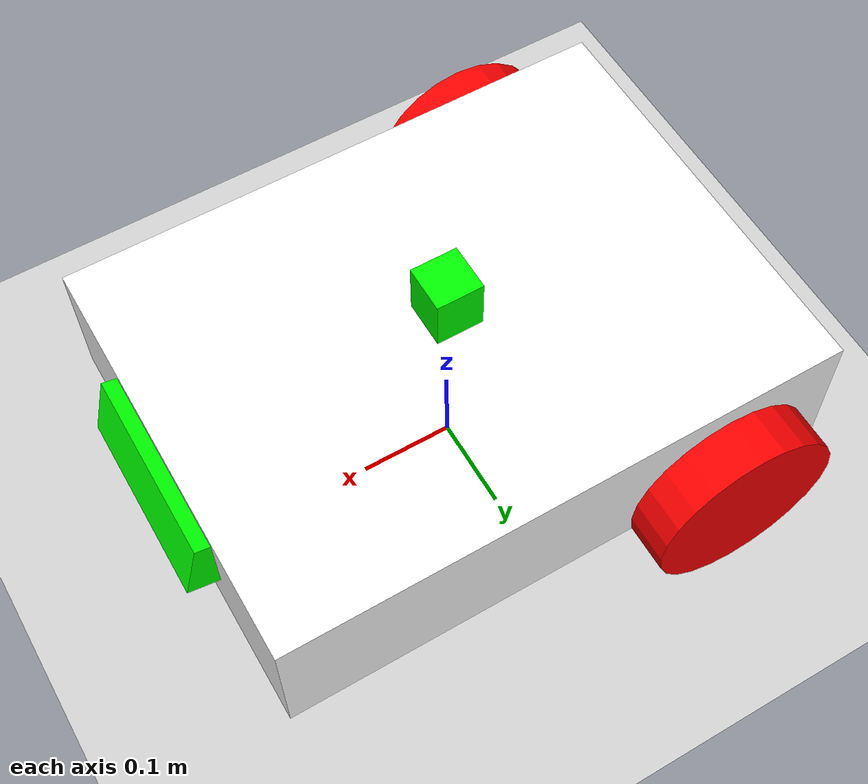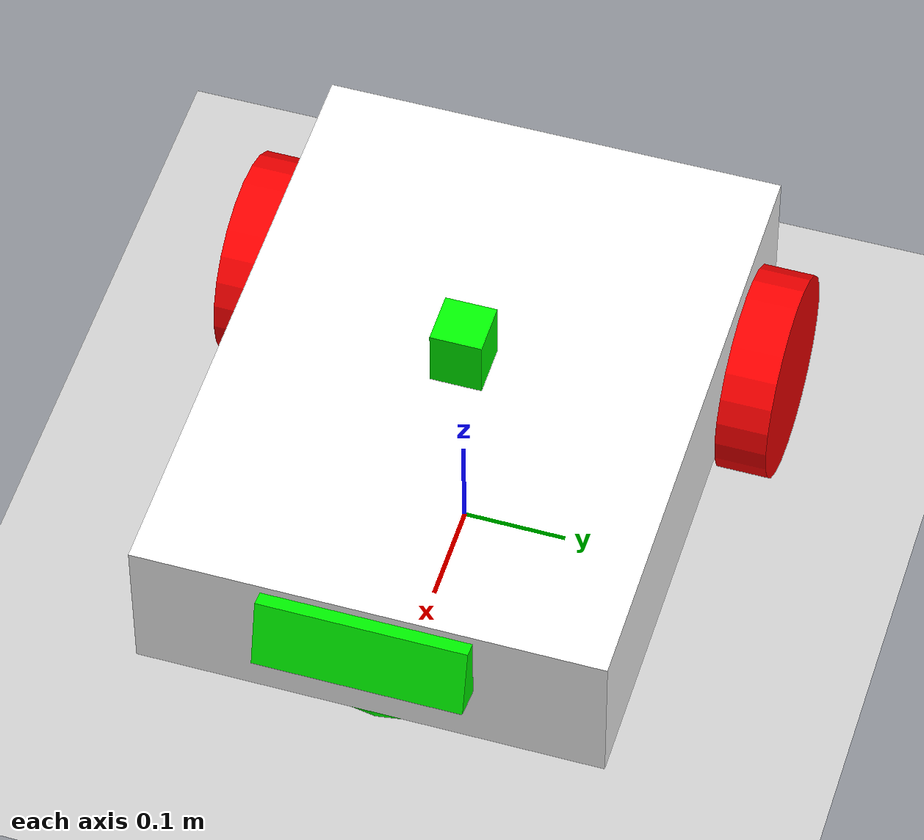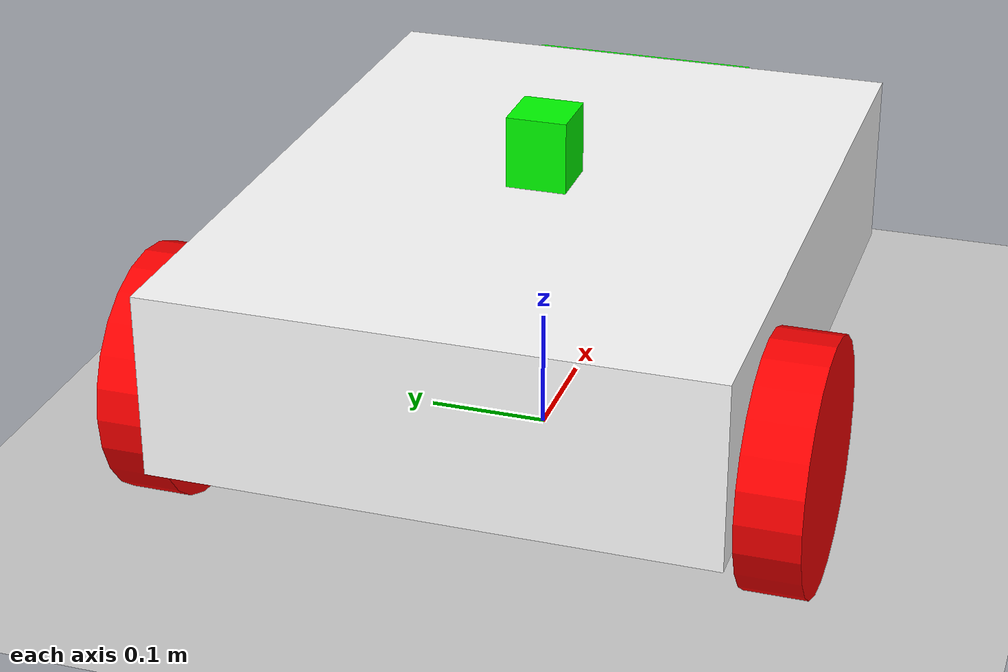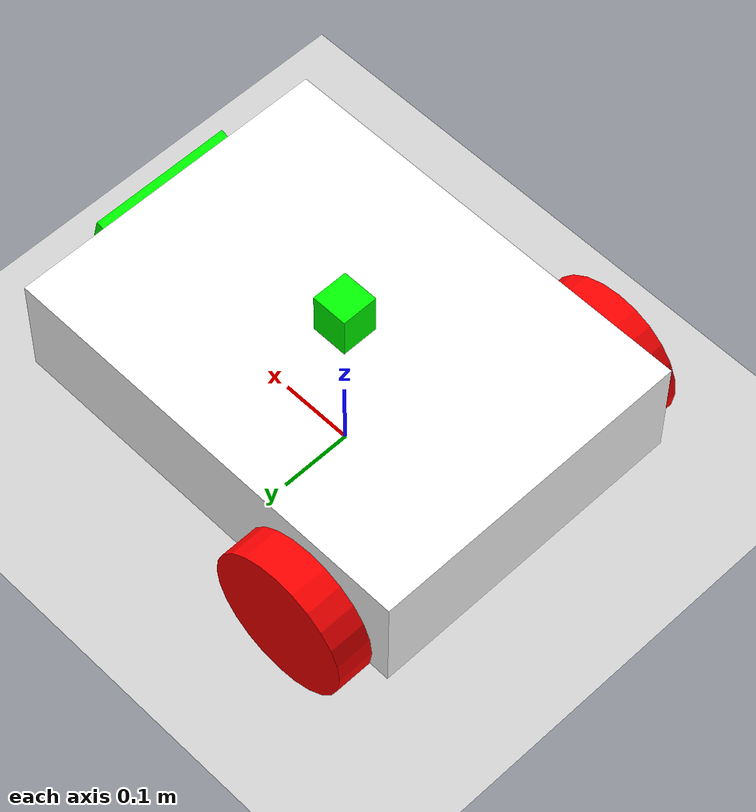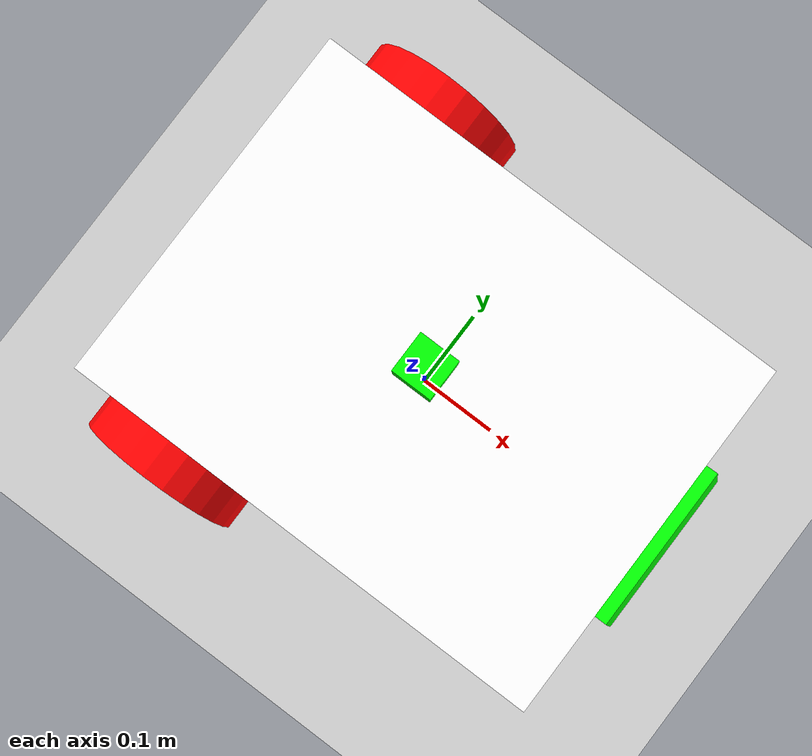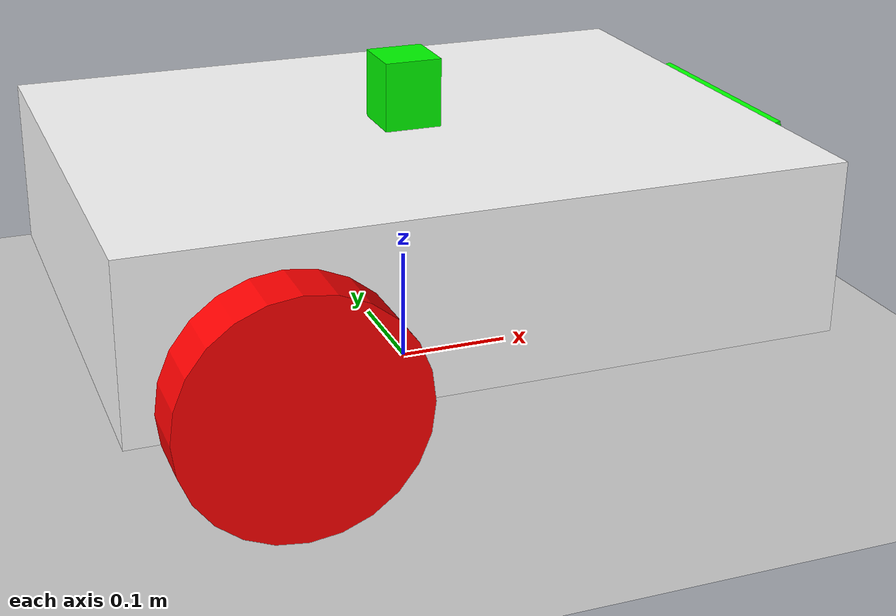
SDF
<?xml version="1.0" ?>
<sdf version="1.8">
    <world name="car_world">
        <physics name="1ms" type="ignored">
            <max_step_size>0.001</max_step_size>
            <real_time_factor>1.0</real_time_factor>
        </physics>
        <plugin
            filename="gz-sim-physics-system"
            name="gz::sim::systems::Physics">
        </plugin>
        <plugin
            filename="gz-sim-user-commands-system"
            name="gz::sim::systems::UserCommands">
        </plugin>
        <plugin
            filename="gz-sim-scene-broadcaster-system"
            name="gz::sim::systems::SceneBroadcaster">
        </plugin>

        <plugin filename="gz-sim-imu-system"
                name="gz::sim::systems::Imu">
        </plugin>
         <plugin
            filename="gz-sim-contact-system"
            name="gz::sim::systems::Contact">
        </plugin>
        <plugin
            filename="gz-sim-sensors-system"
            name="gz::sim::systems::Sensors">
            <render_engine>ogre2</render_engine>
        </plugin>

        <light type="directional" name="sun">
            <cast_shadows>true</cast_shadows>
            <pose>0 0 10 0 0 0</pose>
            <diffuse>0.8 0.8 0.8 1</diffuse>
            <specular>0.2 0.2 0.2 1</specular>
            <attenuation>
                <range>1000</range>
                <constant>0.9</constant>
                <linear>0.01</linear>
                <quadratic>0.001</quadratic>
            </attenuation>
            <direction>-0.5 0.1 -0.9</direction>
        </light>
        <model name="ground_plane">
            <static>true</static>
            <link name="link">
                <collision name="collision">
                <geometry>
                    <plane>
                    <normal>0 0 1</normal>
                    </plane>
                </geometry>
                </collision>
                <visual name="visual">
                <geometry>
                    <plane>
                    <normal>0 0 1</normal>
                    <size>100 100</size>
                    </plane>
                </geometry>
                <material>
                    <ambient>0.8 0.8 0.8 1</ambient>
                    <diffuse>0.8 0.8 0.8 1</diffuse>
                    <specular>0.8 0.8 0.8 1</specular>
                </material>
                </visual>
            </link>
        </model>
        <model name='vehicle_white'>
            <link name='chassis'>
                <pose>0.0 0 0.15 0 0 0</pose>
                <inertial> <!--inertial properties of the link mass, inertia matix-->
                    <mass>1.14395</mass>
                    <inertia>
                        <ixx>0.095329</ixx>
                        <ixy>0</ixy>
                        <ixz>0</ixz>
                        <iyy>0.381317</iyy>
                        <iyz>0</iyz>
                        <izz>0.476646</izz>
                    </inertia>
                </inertial>
                <visual name='visual'>
                    <geometry>
                        <box>
                            <size>0.6 0.45 0.15</size>
                        </box>
                    </geometry>
                    <!--let's add color to our link-->
                    <material>
                        <ambient>1 1 1 1</ambient>
                        <diffuse>1 1 1 1</diffuse>
                        <specular>1 1 1 1</specular>
                    </material>
                </visual>
                <collision name='collision'>
                    <geometry>
                        <box>
                            <size>0.6 0.45 0.15</size>
                        </box>
                    </geometry>
                </collision>
                <!-- imu_sensor -->
                <sensor name="imu_sensor" type="imu">
                    <always_on>1</always_on>
                    <update_rate>1</update_rate>
                    <visualize>true</visualize>
                    <topic>imu</topic>
                </sensor>
            </link>
            <!-- left_wheel -->
            <link name='left_wheel'>
                <pose relative_to="chassis">-0.175 0.25 -0.05 -1.5707 0 0</pose>
                <inertial>
                    <mass>1</mass>
                    <inertia>
                        <ixx>0.043333</ixx>
                        <ixy>0</ixy>
                        <ixz>0</ixz>
                        <iyy>0.043333</iyy>
                        <iyz>0</iyz>
                        <izz>0.08</izz>
                    </inertia>
                </inertial>
                    <visual name='visual'>
                    <geometry>
                        <cylinder>
                            <radius>0.1</radius>
                            <length>0.05</length>
                        </cylinder>
                    </geometry>
                    <material>
                        <ambient>1.0 0.0 0.0 1</ambient>
                        <diffuse>1.0 0.0 0.0 1</diffuse>
                        <specular>1.0 0.0 0.0 1</specular>
                    </material>
                </visual>
                <collision name='collision'>
                    <geometry>
                        <cylinder>
                            <radius>0.1</radius>
                            <length>0.05</length>
                        </cylinder>
                    </geometry>
                </collision>
            </link>
            <!--The same as left wheel but with different position-->
            <link name='right_wheel'>
                <pose relative_to="chassis">-0.175 -0.25 -0.05 -1.5707 0 0</pose> <!--angles are in radian-->
                <inertial>
                    <mass>1</mass>
                    <inertia>
                        <ixx>0.043333</ixx>
                        <ixy>0</ixy>
                        <ixz>0</ixz>
                        <iyy>0.043333</iyy>
                        <iyz>0</iyz>
                        <izz>0.08</izz>
                    </inertia>
                </inertial>
                <visual name='visual'>
                    <geometry>
                        <cylinder>
                            <radius>0.1</radius>
                            <length>0.05</length>
                        </cylinder>
                    </geometry>
                    <material>
                        <ambient>1.0 0.0 0.0 1</ambient>
                        <diffuse>1.0 0.0 0.0 1</diffuse>
                        <specular>1.0 0.0 0.0 1</specular>
                    </material>
                </visual>
                <collision name='collision'>
                    <geometry>
                        <cylinder>
                            <radius>0.1</radius>
                            <length>0.05</length>
                        </cylinder>
                    </geometry>
                </collision>
            </link>
            <frame name="caster_frame" attached_to='chassis'>
                <pose>0.2 0 -0.05 0 0 0</pose>
            </frame>
            <!--caster wheel-->
            <link name='caster'>
                <pose relative_to='caster_frame'/>
                <inertial>
                    <mass>1</mass>
                    <inertia>
                        <ixx>0.016</ixx>
                        <ixy>0</ixy>
                        <ixz>0</ixz>
                        <iyy>0.016</iyy>
                        <iyz>0</iyz>
                        <izz>0.016</izz>
                    </inertia>
                </inertial>
                <visual name='visual'>
                    <geometry>
                        <sphere>
                            <radius>0.1</radius>
                        </sphere>
                    </geometry>
                    <material>
                        <ambient>0.0 1 0.0 1</ambient>
                        <diffuse>0.0 1 0.0 1</diffuse>
                        <specular>0.0 1 0.0 1</specular>
                    </material>
                </visual>
                <collision name='collision'>
                    <geometry>
                        <sphere>
                            <radius>0.1</radius>
                        </sphere>
                    </geometry>
                </collision>
            </link>
            <link name='lidar'>
                <pose>0 0 0.25 0 0 0</pose>
                <inertial>
                    <mass>0.1</mass>
                    <inertia>
                        <ixx>0.016</ixx>
                        <ixy>0</ixy>
                        <ixz>0</ixz>
                        <iyy>0.016</iyy>
                        <iyz>0</iyz>
                        <izz>0.016</izz>
                    </inertia>
                </inertial>
                <visual name='visual'>
                    <geometry>
                        <box>
                            <size>0.050 0.050 0.07</size>
                        </box>
                    </geometry>
                    <material>
                        <ambient>0.0 1 0.0 1</ambient>
                        <diffuse>0.0 1 0.0 1</diffuse>
                        <specular>0.0 1 0.0 1</specular>
                    </material>
                </visual>
                <collision name='collision'>
                    <geometry>
                        <box>
                            <size>0.050 0.050 0.07</size>
                        </box>
                    </geometry>
                </collision>
                <sensor name='gpu_lidar' type='gpu_lidar'>
                    <pose relative_to='lidar'>0 0 0 0 0 0</pose>
                    <topic>scan</topic>
                    <update_rate>10</update_rate>
                    <ray>
                        <scan>
                            <horizontal>
                                <samples>640</samples>
                                <resolution>1</resolution>
                                <min_angle>-1.57</min_angle>
                                <max_angle>1.57</max_angle>
                            </horizontal>
                            <vertical>
                                <samples>1</samples>
                                <resolution>0.01</resolution>
                                <min_angle>0</min_angle>
                                <max_angle>0</max_angle>
                            </vertical>
                        </scan>
                        <range>
                            <min>0.08</min>
                            <max>10.0</max>
                            <resolution>0.01</resolution>
                        </range>
                    </ray>
                    <always_on>1</always_on>
                    <visualize>true</visualize>
                </sensor>
            </link>
            <joint name='joint_lidar' type='fixed'>
                <parent>chassis</parent>
                <child>lidar</child>
            </joint>

            <link name='camera'>
                <pose>0.3 0.0 0.18 0 -0.25 0</pose>
                <inertial>
                    <mass>0.1</mass>
                    <inertia>
                        <ixx>0.016</ixx>
                        <ixy>0</ixy>
                        <ixz>0</ixz>
                        <iyy>0.016</iyy>
                        <iyz>0</iyz>
                        <izz>0.016</izz>
                    </inertia>
                </inertial>
                <visual name='visual'>
                    <geometry>
                        <box>
                            <size>0.050 0.20 0.07</size>
                        </box>
                    </geometry>
                    <material>
                        <ambient>0.0 1 0.0 1</ambient>
                        <diffuse>0.0 1 0.0 1</diffuse>
                        <specular>0.0 1 0.0 1</specular>
                    </material>
                </visual>
                <collision name='collision'>
                    <geometry>
                        <box>
                            <size>0.050 0.20 0.07</size>
                        </box>
                    </geometry>
                </collision>
                <sensor name="IMX219" type="camera">
                    <pose>0.01233 -0.03 .01878 0 0 0</pose>
                    <camera>
                    <image>
                        <width>640</width>
                        <height>480</height>
                    </image>
                    <clip>
                        <near>0.1</near>
                        <far>100</far>
                    </clip>
                    <distortion>
                        <k1>1.578758331993112829e-01</k1>
                        <k2>-5.784303605943902360e-01</k2>
                        <k3>-8.740723680089258069e-03</k3>
                        <p1>1.359451618091441112e-03</p1>
                        <p2>1.640043376158566713e-01</p2>
                        <center>0.5 0.5</center>
                    </distortion>
                    <lens>
                        <type>pinhole</type>
                        <scale_to_hfov>false</scale_to_hfov>
                        <intrinsics>
                        <fx>4.970870507466349295e+02</fx>
                        <fy>4.976011127668800782e+02</fy>
                        <cx>3.168387473166100108e+02</cx>
                        <cy>2.342740555042151982e+02</cy>
                        <s>0.0</s>
                        </intrinsics>
                    </lens>
                    </camera>
                    <always_on>1</always_on>
                    <update_rate>30</update_rate>
                    <visualize>true</visualize>
                    <topic>camera</topic>
                </sensor>
            </link>
            <joint name='joint_camera' type='fixed'>
                <parent>chassis</parent>
                <child>camera</child>
            </joint>

            <joint name='left_wheel_joint' type='revolute'>
                <pose relative_to='left_wheel'/>
                <parent>chassis</parent>
                <child>left_wheel</child>
                <axis>
                    <xyz expressed_in='__model__'>0 1 0</xyz> <!--can be defined as any frame or even arbitrary frames-->
                    <limit>
                        <lower>-1.79769e+308</lower>    <!--negative infinity-->
                        <upper>1.79769e+308</upper>     <!--positive infinity-->
                    </limit>
                </axis>
            </joint>
            <joint name='right_wheel_joint' type='revolute'>
                <pose relative_to='right_wheel'/>
                <parent>chassis</parent>
                <child>right_wheel</child>
                <axis>
                    <xyz expressed_in='__model__'>0 1 0</xyz>
                    <limit>
                        <lower>-1.79769e+308</lower>    <!--negative infinity-->
                        <upper>1.79769e+308</upper>     <!--positive infinity-->
                    </limit>
                </axis>
            </joint>

            <joint name='caster_wheel' type='ball'>
                <parent>chassis</parent>
                <child>caster</child>
            </joint>

            <plugin
                filename="gz-sim-diff-drive-system"
                name="gz::sim::systems::DiffDrive">
                <left_joint>left_wheel_joint</left_joint>
                <right_joint>right_wheel_joint</right_joint>
                <wheel_separation>1.2</wheel_separation>
                <wheel_radius>0.4</wheel_radius>
                <odom_publish_frequency>1</odom_publish_frequency>
                <topic>cmd_vel</topic>
            </plugin>

            <plugin
                filename="gz-sim-joint-state-publisher-system"
                name="gz::sim::systems::JointStatePublisher">
            </plugin>

            <plugin
                filename="gz-sim-pose-publisher-system"
                name="gz::sim::systems::PosePublisher">
                <publish_link_pose>true</publish_link_pose>
                <use_pose_vector_msg>true</use_pose_vector_msg>
                <static_publisher>true</static_publisher>
                <static_update_frequency>1</static_update_frequency>
            </plugin>

            <plugin
                filename="gz-sim-odometry-publisher-system"
                name="gz::sim::systems::OdometryPublisher">
                <odom_frame>odom</odom_frame>
                <robot_base_frame>vehicle_white</robot_base_frame>
            </plugin>
        </model>

        <!-- Moving Forward-->
        <plugin filename="gz-sim-triggered-publisher-system"
                name="gz::sim::systems::TriggeredPublisher">
            <input type="gz.msgs.Int32" topic="/keyboard/keypress">
                <match field="data">16777235</match><!-- Upwards Arrow ⬆ -->
            </input>
            <output type="gz.msgs.Twist" topic="/cmd_vel">
                linear: {x: 0.5}, angular: {z: 0.0}
            </output>
        </plugin>
        <!-- Moving Backward-->
        <plugin filename="gz-sim-triggered-publisher-system"
                name="gz::sim::systems::TriggeredPublisher">
            <input type="gz.msgs.Int32" topic="/keyboard/keypress">
                <match field="data">16777237</match><!--Downwards Arrow -->
            </input>
            <output type="gz.msgs.Twist" topic="/cmd_vel">
                linear: {x: -0.5}, angular: {z: 0.0}
            </output>
        </plugin>
        <!-- Moving Right-->
        <plugin filename="gz-sim-triggered-publisher-system"
                name="gz::sim::systems::TriggeredPublisher">
            <input type="gz.msgs.Int32" topic="/keyboard/keypress">
                <match field="data">16777236</match><!--  →	Rightwards Arrow -->
            </input>
            <output type="gz.msgs.Twist" topic="/cmd_vel">
                linear: {x: 0.0}, angular: {z: -0.5}
            </output>
        </plugin>
        <!-- Moving Left-->
        <plugin filename="gz-sim-triggered-publisher-system"
                name="gz::sim::systems::TriggeredPublisher">
            <input type="gz.msgs.Int32" topic="/keyboard/keypress">
                <match field="data">16777234</match><!--  ←	Leftwards Arrow -->
            </input>
            <output type="gz.msgs.Twist" topic="/cmd_vel">
                linear: {x: 0.0}, angular: {z: 0.5}
            </output>
        </plugin>

        <!-- Stop-->
        <plugin filename="gz-sim-triggered-publisher-system"
                name="gz::sim::systems::TriggeredPublisher">
            <input type="gz.msgs.Int32" topic="/keyboard/keypress">
                <match field="data">75</match>
            </input>
            <output type="gz.msgs.Twist" topic="/cmd_vel">
                linear: {x: 0.0}, angular: {z: 0.0}
            </output>
        </plugin>
    </world>
</sdf>
